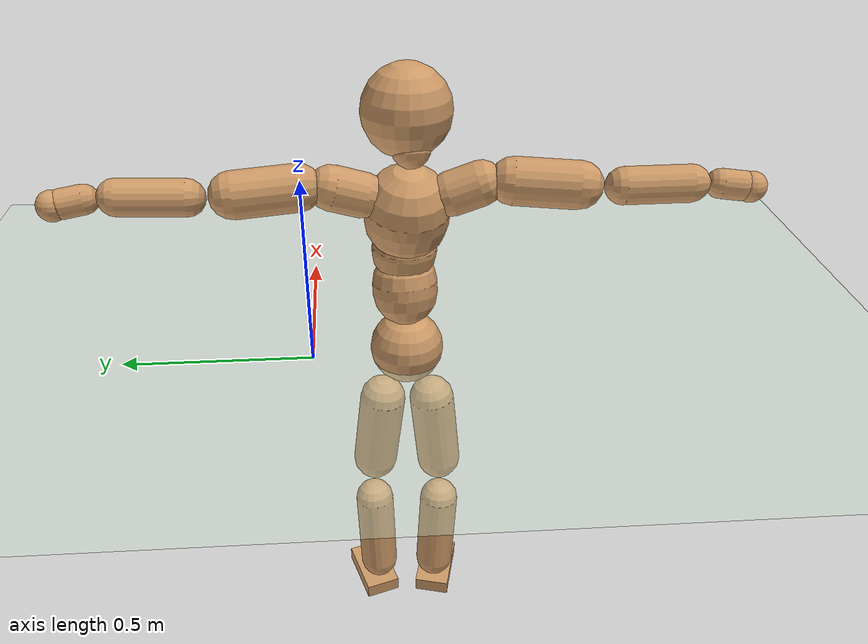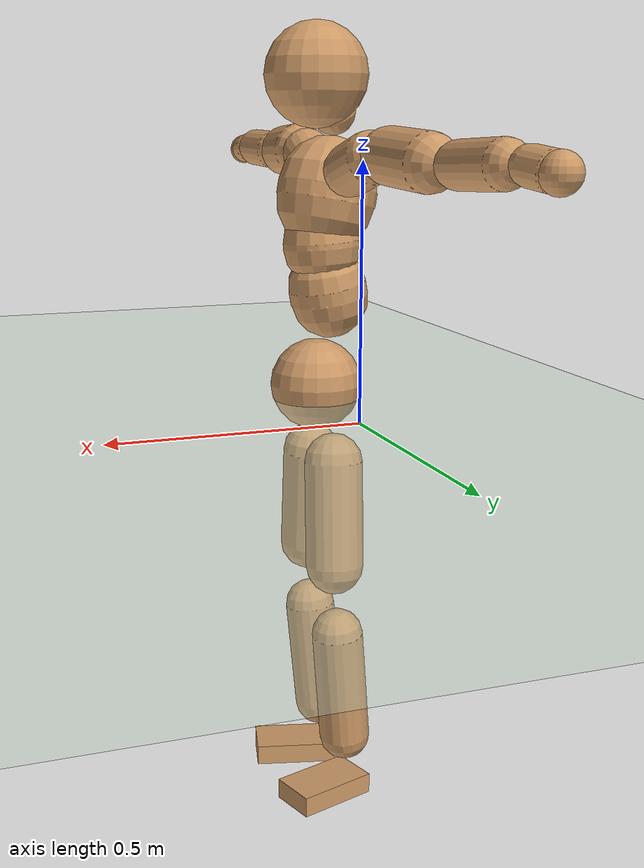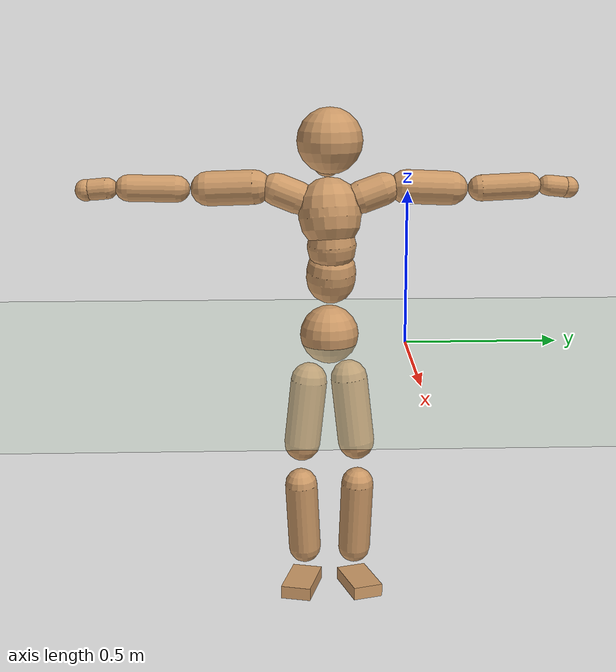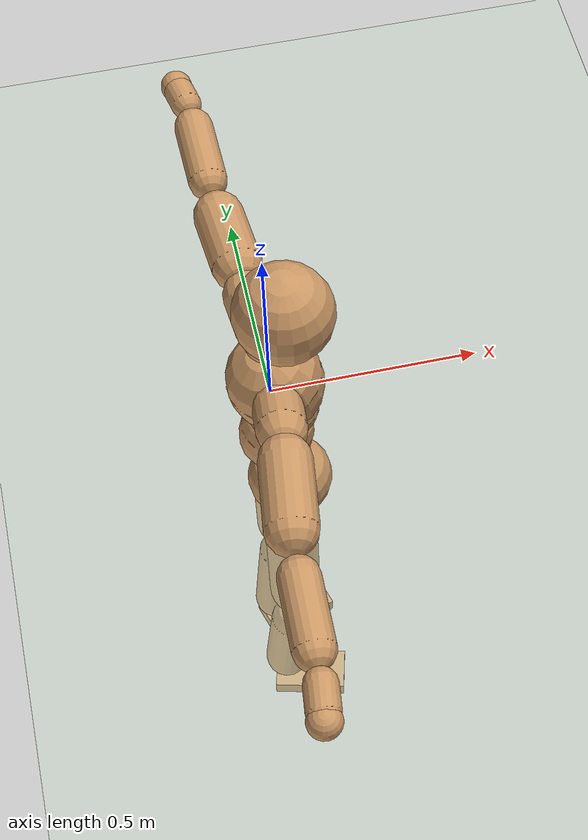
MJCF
<mujoco model="humanoid">
  <compiler coordinate="local"/>
  <default>
    <joint damping="0.0" armature="0.01" stiffness="0.0" limited="true"/>
    <geom conaffinity="1" condim="3" contype="7" margin="0.001" rgba="0.8 0.6 .4 1"/>
  </default>
  <asset>
    <texture type="skybox" builtin="gradient" rgb1=".4 .5 .6" rgb2="0 0 0" width="100" height="100"/>
    <texture builtin="flat" height="1278" mark="cross" markrgb="1 1 1" name="texgeom" random="0.01" rgb1="0.8 0.6 0.4" rgb2="0.8 0.6 0.4" type="cube" width="127"/>
    <texture builtin="checker" height="100" name="texplane" rgb1="0 0 0" rgb2="0.8 0.8 0.8" type="2d" width="100"/>
    <material name="MatPlane" reflectance="0.5" shininess="1" specular="1" texrepeat="60 60" texture="texplane"/>
    <material name="geom" texture="texgeom" texuniform="true"/>
  </asset>
  <worldbody>
    <light cutoff="100" diffuse="1 1 1" dir="-0 0 -1.3" directional="true" exponent="1" pos="0 0 1.3" specular=".1 .1 .1"/>
    <geom conaffinity="1" condim="3" name="floor" pos="0 0 0" rgba="0.8 0.9 0.8 1" size="100 100 .2" type="plane" material="MatPlane"/>
    <body name="Pelvis" pos="-0.002 -0.2503 0.0288">
      <freejoint name="Pelvis"/>
      <geom type="sphere" contype="1" conaffinity="1" density="500" size="0.0962" pos="0.0000 0.0000 0.0000" name="Pelvis"/>
      <body name="L_Hip" pos="-0.0172 0.0582 -0.0821">
        <joint name="L_Hip_x" type="hinge" pos="0 0 0" axis="1 0 0" stiffness="800" damping="80" armature="0.02" range="-180.0000 180.0000"/>
        <joint name="L_Hip_y" type="hinge" pos="0 0 0" axis="0 1 0" stiffness="800" damping="80" armature="0.02" range="-180.0000 180.0000"/>
        <joint name="L_Hip_z" type="hinge" pos="0 0 0" axis="0 0 1" stiffness="800" damping="80" armature="0.02" range="-180.0000 180.0000"/>
        <geom type="capsule" contype="1" conaffinity="1" density="500" fromto="0.0016 0.0082 -0.0742 0.0066 0.0326 -0.2969" size="0.0611" name="L_Hip"/>
        <body name="L_Knee" pos="0.0082 0.0408 -0.3711">
          <joint name="L_Knee_x" type="hinge" pos="0 0 0" axis="1 0 0" stiffness="800" damping="80" armature="0.02" range="-180.0000 180.0000"/>
          <joint name="L_Knee_y" type="hinge" pos="0 0 0" axis="0 1 0" stiffness="800" damping="80" armature="0.02" range="-180.0000 180.0000"/>
          <joint name="L_Knee_z" type="hinge" pos="0 0 0" axis="0 0 1" stiffness="800" damping="80" armature="0.02" range="-180.0000 180.0000"/>
          <geom type="capsule" contype="1" conaffinity="1" density="500" fromto="-0.0074 -0.0029 -0.0816 -0.0297 -0.0118 -0.3265" size="0.0549" name="L_Knee"/>
          <body name="L_Ankle" pos="-0.0372 -0.0147 -0.4081">
            <joint name="L_Ankle_x" type="hinge" pos="0 0 0" axis="1 0 0" stiffness="800" damping="80" armature="0.02" range="-180.0000 180.0000"/>
            <joint name="L_Ankle_y" type="hinge" pos="0 0 0" axis="0 1 0" stiffness="800" damping="80" armature="0.02" range="-180.0000 180.0000"/>
            <joint name="L_Ankle_z" type="hinge" pos="0 0 0" axis="0 0 1" stiffness="800" damping="80" armature="0.02" range="-180.0000 180.0000"/>
            <geom type="box" contype="1" conaffinity="1" density="500" pos="0.0607 0.0190 -0.0292" size="0.0876 0.0506 0.0218" quat="0.9885 0.0000 0.0000 0.1512" name="L_Ankle"/>
            <body name="L_Toe" pos="0.1213 0.038 -0.0584">
              <joint name="L_Toe_x" type="hinge" pos="0 0 0" axis="1 0 0" stiffness="500" damping="50" armature="0.02" range="-180.0000 180.0000"/>
              <joint name="L_Toe_y" type="hinge" pos="0 0 0" axis="0 1 0" stiffness="500" damping="50" armature="0.02" range="-180.0000 180.0000"/>
              <joint name="L_Toe_z" type="hinge" pos="0 0 0" axis="0 0 1" stiffness="500" damping="50" armature="0.02" range="-180.0000 180.0000"/>
              <geom type="box" contype="1" conaffinity="1" density="500" pos="0.0000 0.0000 0.0284" size="0.0011 0.0025 0.0011" quat="0.9877 0.0000 0.0000 0.1562" name="L_Toe"/>
            </body>
          </body>
        </body>
      </body>
      <body name="R_Hip" pos="-0.0133 -0.0598 -0.09">
        <joint name="R_Hip_x" type="hinge" pos="0 0 0" axis="1 0 0" stiffness="800" damping="80" armature="0.02" range="-180.0000 180.0000"/>
        <joint name="R_Hip_y" type="hinge" pos="0 0 0" axis="0 1 0" stiffness="800" damping="80" armature="0.02" range="-180.0000 180.0000"/>
        <joint name="R_Hip_z" type="hinge" pos="0 0 0" axis="0 0 1" stiffness="800" damping="80" armature="0.02" range="-180.0000 180.0000"/>
        <geom type="capsule" contype="1" conaffinity="1" density="500" fromto="-0.0007 -0.0081 -0.0737 -0.0026 -0.0323 -0.2948" size="0.0606" name="R_Hip"/>
        <body name="R_Knee" pos="-0.0033 -0.0404 -0.3685">
          <joint name="R_Knee_x" type="hinge" pos="0 0 0" axis="1 0 0" stiffness="800" damping="80" armature="0.02" range="-180.0000 180.0000"/>
          <joint name="R_Knee_y" type="hinge" pos="0 0 0" axis="0 1 0" stiffness="800" damping="80" armature="0.02" range="-180.0000 180.0000"/>
          <joint name="R_Knee_z" type="hinge" pos="0 0 0" axis="0 0 1" stiffness="800" damping="80" armature="0.02" range="-180.0000 180.0000"/>
          <geom type="capsule" contype="1" conaffinity="1" density="500" fromto="-0.0068 0.0038 -0.0803 -0.0273 0.0151 -0.3213" size="0.0551" name="R_Knee"/>
          <body name="R_Ankle" pos="-0.0341 0.0189 -0.4017">
            <joint name="R_Ankle_x" type="hinge" pos="0 0 0" axis="1 0 0" stiffness="800" damping="80" armature="0.02" range="-180.0000 180.0000"/>
            <joint name="R_Ankle_y" type="hinge" pos="0 0 0" axis="0 1 0" stiffness="800" damping="80" armature="0.02" range="-180.0000 180.0000"/>
            <joint name="R_Ankle_z" type="hinge" pos="0 0 0" axis="0 0 1" stiffness="800" damping="80" armature="0.02" range="-180.0000 180.0000"/>
            <geom type="box" contype="1" conaffinity="1" density="500" pos="0.0645 -0.0163 -0.0302" size="0.0894 0.0508 0.0218" quat="0.9924 0.0000 0.0000 -0.1232" name="R_Ankle"/>
            <body name="R_Toe" pos="0.1291 -0.0326 -0.0604">
              <joint name="R_Toe_x" type="hinge" pos="0 0 0" axis="1 0 0" stiffness="500" damping="50" armature="0.02" range="-180.0000 180.0000"/>
              <joint name="R_Toe_y" type="hinge" pos="0 0 0" axis="0 1 0" stiffness="500" damping="50" armature="0.02" range="-180.0000 180.0000"/>
              <joint name="R_Toe_z" type="hinge" pos="0 0 0" axis="0 0 1" stiffness="500" damping="50" armature="0.02" range="-180.0000 180.0000"/>
              <geom type="box" contype="1" conaffinity="1" density="500" pos="0.0000 0.0000 0.0303" size="0.0011 0.0025 0.0011" quat="0.9935 0.0000 0.0000 -0.1142" name="R_Toe"/>
            </body>
          </body>
        </body>
      </body>
      <body name="Torso" pos="-0.0374 0.0041 0.1245">
        <joint name="Torso_x" type="hinge" pos="0 0 0" axis="1 0 0" stiffness="1000" damping="100" armature="0.02" range="-180.0000 180.0000"/>
        <joint name="Torso_y" type="hinge" pos="0 0 0" axis="0 1 0" stiffness="1000" damping="100" armature="0.02" range="-180.0000 180.0000"/>
        <joint name="Torso_z" type="hinge" pos="0 0 0" axis="0 0 1" stiffness="1000" damping="100" armature="0.02" range="-180.0000 180.0000"/>
        <geom type="capsule" contype="1" conaffinity="1" density="500" fromto="0.0164 0.0030 0.0842 0.0109 0.0020 0.0561" size="0.0812" name="Torso"/>
        <body name="Spine" pos="0.0274 0.0049 0.1403">
          <joint name="Spine_x" type="hinge" pos="0 0 0" axis="1 0 0" stiffness="1000" damping="100" armature="0.02" range="-180.0000 180.0000"/>
          <joint name="Spine_y" type="hinge" pos="0 0 0" axis="0 1 0" stiffness="1000" damping="100" armature="0.02" range="-180.0000 180.0000"/>
          <joint name="Spine_z" type="hinge" pos="0 0 0" axis="0 0 1" stiffness="1000" damping="100" armature="0.02" range="-180.0000 180.0000"/>
          <geom type="capsule" contype="1" conaffinity="1" density="500" fromto="0.0020 -0.0013 0.0346 0.0013 -0.0009 0.0230" size="0.08" name="Spine"/>
          <body name="Chest" pos="0.0033 -0.0022 0.0576">
            <joint name="Chest_x" type="hinge" pos="0 0 0" axis="1 0 0" stiffness="1000" damping="100" armature="0.02" range="-180.0000 180.0000"/>
            <joint name="Chest_y" type="hinge" pos="0 0 0" axis="0 1 0" stiffness="1000" damping="100" armature="0.02" range="-180.0000 180.0000"/>
            <joint name="Chest_z" type="hinge" pos="0 0 0" axis="0 0 1" stiffness="1000" damping="100" armature="0.02" range="-180.0000 180.0000"/>
            <geom type="capsule" contype="1" conaffinity="1" density="500" fromto="-0.0173 -0.0052 0.0895 -0.0115 -0.0035 0.0597" size="0.1023" name="Chest"/>
            <body name="Neck" pos="-0.0396 -0.0141 0.2178">
              <joint name="Neck_x" type="hinge" pos="0 0 0" axis="1 0 0" stiffness="500" damping="50" armature="0.02" range="-180.0000 180.0000"/>
              <joint name="Neck_y" type="hinge" pos="0 0 0" axis="0 1 0" stiffness="500" damping="50" armature="0.02" range="-180.0000 180.0000"/>
              <joint name="Neck_z" type="hinge" pos="0 0 0" axis="0 0 1" stiffness="500" damping="50" armature="0.02" range="-180.0000 180.0000"/>
              <geom type="capsule" contype="1" conaffinity="1" density="500" fromto="0.0098 0.0019 0.0181 0.0393 0.0076 0.0725" size="0.046" name="Neck"/>
              <body name="Head" pos="0.0492 0.0095 0.0907">
                <joint name="Head_x" type="hinge" pos="0 0 0" axis="1 0 0" stiffness="500" damping="50" armature="0.02" range="-180.0000 180.0000"/>
                <joint name="Head_y" type="hinge" pos="0 0 0" axis="0 1 0" stiffness="500" damping="50" armature="0.02" range="-180.0000 180.0000"/>
                <joint name="Head_z" type="hinge" pos="0 0 0" axis="0 0 1" stiffness="500" damping="50" armature="0.02" range="-180.0000 180.0000"/>
                <geom type="sphere" contype="1" conaffinity="1" density="500" size="0.1056" pos="0.0000 0.0000 0.0000" name="Head"/>
              </body>
            </body>
            <body name="L_Thorax" pos="-0.0208 0.0709 0.1155">
              <joint name="L_Thorax_x" type="hinge" pos="0 0 0" axis="1 0 0" stiffness="500" damping="50" armature="0.02" range="-180.0000 180.0000"/>
              <joint name="L_Thorax_y" type="hinge" pos="0 0 0" axis="0 1 0" stiffness="500" damping="50" armature="0.02" range="-180.0000 180.0000"/>
              <joint name="L_Thorax_z" type="hinge" pos="0 0 0" axis="0 0 1" stiffness="500" damping="50" armature="0.02" range="-180.0000 180.0000"/>
              <geom type="capsule" contype="1" conaffinity="1" density="500" fromto="-0.0038 0.0248 0.0086 -0.0153 0.0991 0.0344" size="0.0532" name="L_Thorax"/>
              <body name="L_Shoulder" pos="-0.0191 0.1239 0.043">
                <joint name="L_Shoulder_x" type="hinge" pos="0 0 0" axis="1 0 0" stiffness="500" damping="50" armature="0.02" range="-720.0000 720.0000"/>
                <joint name="L_Shoulder_y" type="hinge" pos="0 0 0" axis="0 1 0" stiffness="500" damping="50" armature="0.02" range="-720.0000 720.0000"/>
                <joint name="L_Shoulder_z" type="hinge" pos="0 0 0" axis="0 0 1" stiffness="500" damping="50" armature="0.02" range="-720.0000 720.0000"/>
                <geom type="capsule" contype="1" conaffinity="1" density="500" fromto="-0.0043 0.0491 -0.0026 -0.0171 0.1963 -0.0106" size="0.0553" name="L_Shoulder"/>
                <body name="L_Elbow" pos="-0.0214 0.2453 -0.0132">
                  <joint name="L_Elbow_x" type="hinge" pos="0 0 0" axis="1 0 0" stiffness="500" damping="50" armature="0.02" range="-720.0000 720.0000"/>
                  <joint name="L_Elbow_y" type="hinge" pos="0 0 0" axis="0 1 0" stiffness="500" damping="50" armature="0.02" range="-720.0000 720.0000"/>
                  <joint name="L_Elbow_z" type="hinge" pos="0 0 0" axis="0 0 1" stiffness="500" damping="50" armature="0.02" range="-720.0000 720.0000"/>
                  <geom type="capsule" contype="1" conaffinity="1" density="500" fromto="-0.0014 0.0512 0.0022 -0.0055 0.2047 0.0090" size="0.0431" name="L_Elbow"/>
                  <body name="L_Wrist" pos="-0.0069 0.2558 0.0112">
                    <joint name="L_Wrist_x" type="hinge" pos="0 0 0" axis="1 0 0" stiffness="300" damping="30" armature="0.02" range="-180.0000 180.0000"/>
                    <joint name="L_Wrist_y" type="hinge" pos="0 0 0" axis="0 1 0" stiffness="300" damping="30" armature="0.02" range="-180.0000 180.0000"/>
                    <joint name="L_Wrist_z" type="hinge" pos="0 0 0" axis="0 0 1" stiffness="300" damping="30" armature="0.02" range="-180.0000 180.0000"/>
                    <geom type="capsule" contype="1" conaffinity="1" density="500" fromto="-0.0030 0.0171 -0.0021 -0.0121 0.0683 -0.0084" size="0.0339" name="L_Wrist"/>
                    <body name="L_Hand" pos="-0.0151 0.0854 -0.0105">
                      <joint name="L_Hand_x" type="hinge" pos="0 0 0" axis="1 0 0" stiffness="300" damping="30" armature="0.02" range="-180.0000 180.0000"/>
                      <joint name="L_Hand_y" type="hinge" pos="0 0 0" axis="0 1 0" stiffness="300" damping="30" armature="0.02" range="-180.0000 180.0000"/>
                      <joint name="L_Hand_z" type="hinge" pos="0 0 0" axis="0 0 1" stiffness="300" damping="30" armature="0.02" range="-180.0000 180.0000"/>
                      <geom type="sphere" contype="1" conaffinity="1" density="500" size="0.0352" pos="0.0000 0.0000 0.0000" name="L_Hand"/>
                    </body>
                  </body>
                </body>
              </body>
            </body>
            <body name="R_Thorax" pos="-0.0258 -0.0829 0.1143">
              <joint name="R_Thorax_x" type="hinge" pos="0 0 0" axis="1 0 0" stiffness="500" damping="50" armature="0.02" range="-180.0000 180.0000"/>
              <joint name="R_Thorax_y" type="hinge" pos="0 0 0" axis="0 1 0" stiffness="500" damping="50" armature="0.02" range="-180.0000 180.0000"/>
              <joint name="R_Thorax_z" type="hinge" pos="0 0 0" axis="0 0 1" stiffness="500" damping="50" armature="0.02" range="-180.0000 180.0000"/>
              <geom type="capsule" contype="1" conaffinity="1" density="500" fromto="-0.0017 -0.0228 0.0090 -0.0069 -0.0911 0.0358" size="0.0533" name="R_Thorax"/>
              <body name="R_Shoulder" pos="-0.0087 -0.1139 0.0448">
                <joint name="R_Shoulder_x" type="hinge" pos="0 0 0" axis="1 0 0" stiffness="500" damping="50" armature="0.02" range="-720.0000 720.0000"/>
                <joint name="R_Shoulder_y" type="hinge" pos="0 0 0" axis="0 1 0" stiffness="500" damping="50" armature="0.02" range="-720.0000 720.0000"/>
                <joint name="R_Shoulder_z" type="hinge" pos="0 0 0" axis="0 0 1" stiffness="500" damping="50" armature="0.02" range="-720.0000 720.0000"/>
                <geom type="capsule" contype="1" conaffinity="1" density="500" fromto="-0.0060 -0.0500 -0.0023 -0.0240 -0.2001 -0.0091" size="0.0561" name="R_Shoulder"/>
                <body name="R_Elbow" pos="-0.03 -0.2501 -0.0113">
                  <joint name="R_Elbow_x" type="hinge" pos="0 0 0" axis="1 0 0" stiffness="500" damping="50" armature="0.02" range="-720.0000 720.0000"/>
                  <joint name="R_Elbow_y" type="hinge" pos="0 0 0" axis="0 1 0" stiffness="500" damping="50" armature="0.02" range="-720.0000 720.0000"/>
                  <joint name="R_Elbow_z" type="hinge" pos="0 0 0" axis="0 0 1" stiffness="500" damping="50" armature="0.02" range="-720.0000 720.0000"/>
                  <geom type="capsule" contype="1" conaffinity="1" density="500" fromto="-0.0011 -0.0517 0.0009 -0.0043 -0.2066 0.0038" size="0.0438" name="R_Elbow"/>
                  <body name="R_Wrist" pos="-0.0054 -0.2583 0.0047">
                    <joint name="R_Wrist_x" type="hinge" pos="0 0 0" axis="1 0 0" stiffness="300" damping="30" armature="0.02" range="-180.0000 180.0000"/>
                    <joint name="R_Wrist_y" type="hinge" pos="0 0 0" axis="0 1 0" stiffness="300" damping="30" armature="0.02" range="-180.0000 180.0000"/>
                    <joint name="R_Wrist_z" type="hinge" pos="0 0 0" axis="0 0 1" stiffness="300" damping="30" armature="0.02" range="-180.0000 180.0000"/>
                    <geom type="capsule" contype="1" conaffinity="1" density="500" fromto="-0.0019 -0.0175 -0.0017 -0.0077 -0.0701 -0.0068" size="0.0346" name="R_Wrist"/>
                    <body name="R_Hand" pos="-0.0097 -0.0876 -0.0085">
                      <joint name="R_Hand_x" type="hinge" pos="0 0 0" axis="1 0 0" stiffness="300" damping="30" armature="0.02" range="-180.0000 180.0000"/>
                      <joint name="R_Hand_y" type="hinge" pos="0 0 0" axis="0 1 0" stiffness="300" damping="30" armature="0.02" range="-180.0000 180.0000"/>
                      <joint name="R_Hand_z" type="hinge" pos="0 0 0" axis="0 0 1" stiffness="300" damping="30" armature="0.02" range="-180.0000 180.0000"/>
                      <geom type="sphere" contype="1" conaffinity="1" density="500" size="0.0357" pos="0.0000 0.0000 0.0000" name="R_Hand"/>
                    </body>
                  </body>
                </body>
              </body>
            </body>
          </body>
        </body>
      </body>
    </body>
  </worldbody>
  <actuator>
    <motor name="L_Hip_x" joint="L_Hip_x" gear="500"/>
    <motor name="L_Hip_y" joint="L_Hip_y" gear="500"/>
    <motor name="L_Hip_z" joint="L_Hip_z" gear="500"/>
    <motor name="L_Knee_x" joint="L_Knee_x" gear="500"/>
    <motor name="L_Knee_y" joint="L_Knee_y" gear="500"/>
    <motor name="L_Knee_z" joint="L_Knee_z" gear="500"/>
    <motor name="L_Ankle_x" joint="L_Ankle_x" gear="500"/>
    <motor name="L_Ankle_y" joint="L_Ankle_y" gear="500"/>
    <motor name="L_Ankle_z" joint="L_Ankle_z" gear="500"/>
    <motor name="L_Toe_x" joint="L_Toe_x" gear="500"/>
    <motor name="L_Toe_y" joint="L_Toe_y" gear="500"/>
    <motor name="L_Toe_z" joint="L_Toe_z" gear="500"/>
    <motor name="R_Hip_x" joint="R_Hip_x" gear="500"/>
    <motor name="R_Hip_y" joint="R_Hip_y" gear="500"/>
    <motor name="R_Hip_z" joint="R_Hip_z" gear="500"/>
    <motor name="R_Knee_x" joint="R_Knee_x" gear="500"/>
    <motor name="R_Knee_y" joint="R_Knee_y" gear="500"/>
    <motor name="R_Knee_z" joint="R_Knee_z" gear="500"/>
    <motor name="R_Ankle_x" joint="R_Ankle_x" gear="500"/>
    <motor name="R_Ankle_y" joint="R_Ankle_y" gear="500"/>
    <motor name="R_Ankle_z" joint="R_Ankle_z" gear="500"/>
    <motor name="R_Toe_x" joint="R_Toe_x" gear="500"/>
    <motor name="R_Toe_y" joint="R_Toe_y" gear="500"/>
    <motor name="R_Toe_z" joint="R_Toe_z" gear="500"/>
    <motor name="Torso_x" joint="Torso_x" gear="500"/>
    <motor name="Torso_y" joint="Torso_y" gear="500"/>
    <motor name="Torso_z" joint="Torso_z" gear="500"/>
    <motor name="Spine_x" joint="Spine_x" gear="500"/>
    <motor name="Spine_y" joint="Spine_y" gear="500"/>
    <motor name="Spine_z" joint="Spine_z" gear="500"/>
    <motor name="Chest_x" joint="Chest_x" gear="500"/>
    <motor name="Chest_y" joint="Chest_y" gear="500"/>
    <motor name="Chest_z" joint="Chest_z" gear="500"/>
    <motor name="Neck_x" joint="Neck_x" gear="500"/>
    <motor name="Neck_y" joint="Neck_y" gear="500"/>
    <motor name="Neck_z" joint="Neck_z" gear="500"/>
    <motor name="Head_x" joint="Head_x" gear="500"/>
    <motor name="Head_y" joint="Head_y" gear="500"/>
    <motor name="Head_z" joint="Head_z" gear="500"/>
    <motor name="L_Thorax_x" joint="L_Thorax_x" gear="500"/>
    <motor name="L_Thorax_y" joint="L_Thorax_y" gear="500"/>
    <motor name="L_Thorax_z" joint="L_Thorax_z" gear="500"/>
    <motor name="L_Shoulder_x" joint="L_Shoulder_x" gear="500"/>
    <motor name="L_Shoulder_y" joint="L_Shoulder_y" gear="500"/>
    <motor name="L_Shoulder_z" joint="L_Shoulder_z" gear="500"/>
    <motor name="L_Elbow_x" joint="L_Elbow_x" gear="500"/>
    <motor name="L_Elbow_y" joint="L_Elbow_y" gear="500"/>
    <motor name="L_Elbow_z" joint="L_Elbow_z" gear="500"/>
    <motor name="L_Wrist_x" joint="L_Wrist_x" gear="500"/>
    <motor name="L_Wrist_y" joint="L_Wrist_y" gear="500"/>
    <motor name="L_Wrist_z" joint="L_Wrist_z" gear="500"/>
    <motor name="L_Hand_x" joint="L_Hand_x" gear="500"/>
    <motor name="L_Hand_y" joint="L_Hand_y" gear="500"/>
    <motor name="L_Hand_z" joint="L_Hand_z" gear="500"/>
    <motor name="R_Thorax_x" joint="R_Thorax_x" gear="500"/>
    <motor name="R_Thorax_y" joint="R_Thorax_y" gear="500"/>
    <motor name="R_Thorax_z" joint="R_Thorax_z" gear="500"/>
    <motor name="R_Shoulder_x" joint="R_Shoulder_x" gear="500"/>
    <motor name="R_Shoulder_y" joint="R_Shoulder_y" gear="500"/>
    <motor name="R_Shoulder_z" joint="R_Shoulder_z" gear="500"/>
    <motor name="R_Elbow_x" joint="R_Elbow_x" gear="500"/>
    <motor name="R_Elbow_y" joint="R_Elbow_y" gear="500"/>
    <motor name="R_Elbow_z" joint="R_Elbow_z" gear="500"/>
    <motor name="R_Wrist_x" joint="R_Wrist_x" gear="500"/>
    <motor name="R_Wrist_y" joint="R_Wrist_y" gear="500"/>
    <motor name="R_Wrist_z" joint="R_Wrist_z" gear="500"/>
    <motor name="R_Hand_x" joint="R_Hand_x" gear="500"/>
    <motor name="R_Hand_y" joint="R_Hand_y" gear="500"/>
    <motor name="R_Hand_z" joint="R_Hand_z" gear="500"/>
  </actuator>
  <contact>
    <exclude body1="Torso" body2="Chest"/>
    <exclude body1="Head" body2="Chest"/>
    <exclude body1="R_Knee" body2="R_Toe"/>
    <exclude body1="R_Knee" body2="L_Ankle"/>
    <exclude body1="R_Knee" body2="L_Toe"/>
    <exclude body1="L_Knee" body2="L_Toe"/>
    <exclude body1="L_Knee" body2="R_Ankle"/>
    <exclude body1="L_Knee" body2="R_Toe"/>
    <exclude body1="L_Shoulder" body2="Chest"/>
    <exclude body1="R_Shoulder" body2="Chest"/>
  </contact>
  <sensor/>
  <size njmax="700" nconmax="700"/>
</mujoco>
